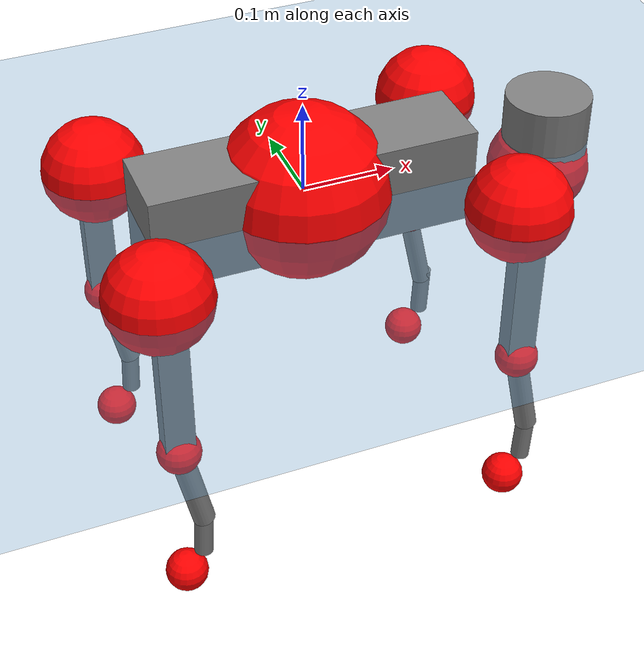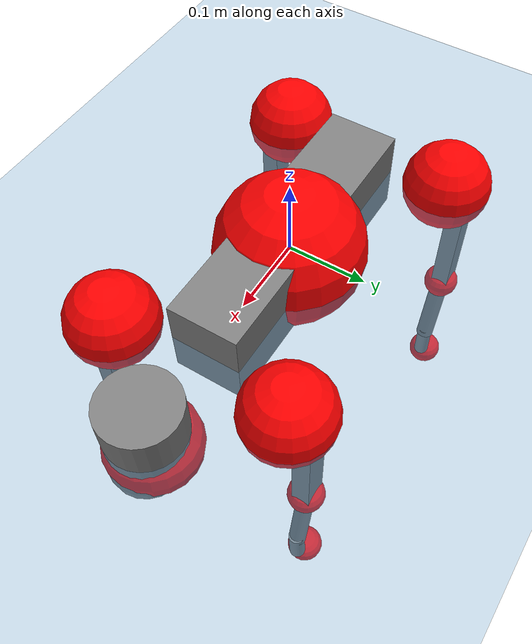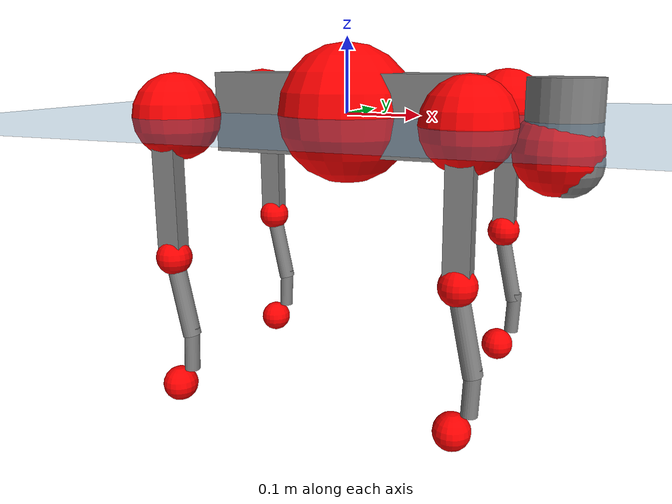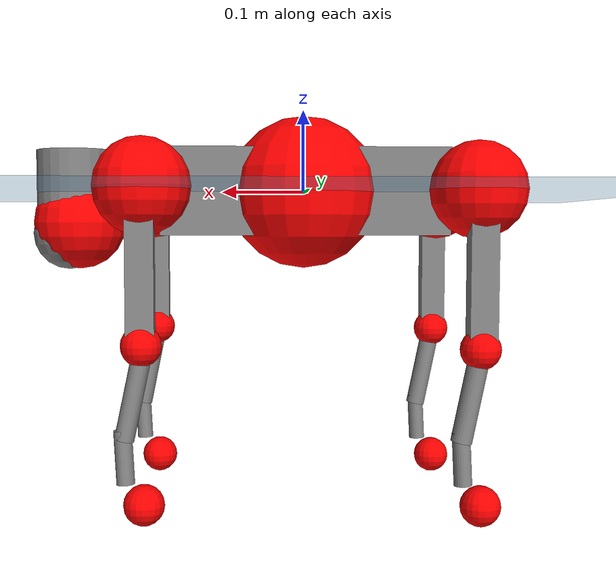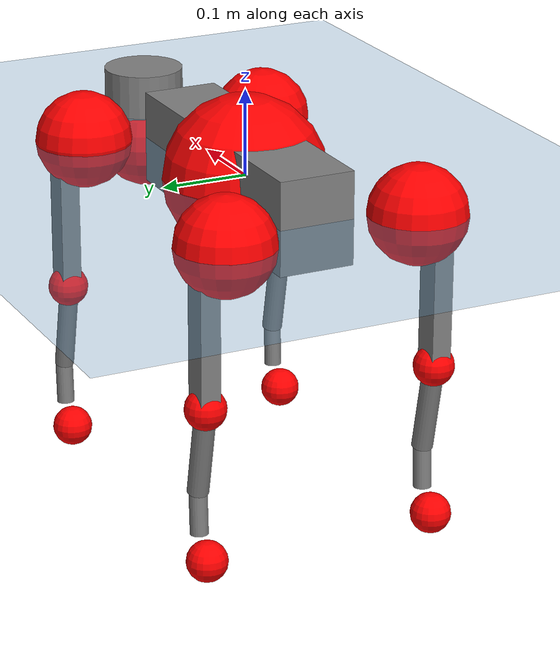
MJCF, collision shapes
<mujoco model="go2">
  <compiler angle="radian" assetdir="assets" balanceinertia="true" inertiafromgeom="false"/>

  <option timestep="0.005" density="1.2" viscosity="2e-05"/>

  <size nkey="1"/>

  <visual>
    <quality shadowsize="8192"/>
    <map shadowclip="0.5"/>
  </visual>

  <default>
    <default class="/">
      <geom contype="0" conaffinity="0" group="1" solref="-1000 -80"/>
      <site size="0.01 0.005 0.005" group="5"/>
      <general forcelimited="true" biastype="affine" gainprm="20" biasprm="0 -20 -0.5"/>
      <default class="go2">
        <joint armature="0.01" damping="0.01" frictionloss="0.2"/>
        <geom condim="1" margin="0.001"/>
        <default class="visual">
          <geom type="mesh" group="2"/>
        </default>
        <default class="collision">
          <geom group="3"/>
          <default class="foot">
            <geom size="0.022 0 0" condim="6" priority="1" friction="0.8 0.02 0.01" solimp="0.015 1 0.022"/>
          </default>
        </default>
        <default class="reward_collision_sphere">
          <geom group="5" rgba="1 0 0 1"/>
        </default>
      </default>
    </default>
  </default>

  <asset>
    <texture type="skybox" colorspace="auto" name="//unnamed_texture_0" builtin="gradient" rgb1="0.95 0.95 0.95" rgb2="0.95 0.95 0.95" width="100" height="600"/>
    <texture type="2d" colorspace="auto" name="texplane" builtin="checker" rgb1="0.345 0.575 0.748" rgb2="0.345 0.575 0.748" markrgb="1 1 1" width="512" height="512"/>
    <material name="MatPlane" class="/" texture="texplane" texuniform="true" texrepeat="2 2" specular="0.9"/>
    <material name="metal" class="/" rgba="0.9 0.95 0.95 1"/>
    <material name="black" class="/" rgba="0 0 0 1"/>
    <material name="white" class="/"/>
    <material name="gray" class="/" rgba="0.671705 0.692426 0.77427 1"/>
    <mesh name="base_0" class="/" file="base_0.obj"/>
    <mesh name="base_1" class="/" file="base_1.obj"/>
    <mesh name="base_2" class="/" file="base_2.obj"/>
    <mesh name="base_3" class="/" file="base_3.obj"/>
    <mesh name="base_4" class="/" file="base_4.obj"/>
    <mesh name="hip_0" class="/" file="hip_0.obj"/>
    <mesh name="hip_1" class="/" file="hip_1.obj"/>
    <mesh name="thigh_0" class="/" file="thigh_0.obj"/>
    <mesh name="thigh_1" class="/" file="thigh_1.obj"/>
    <mesh name="thigh_mirror_0" class="/" file="thigh_mirror_0.obj"/>
    <mesh name="thigh_mirror_1" class="/" file="thigh_mirror_1.obj"/>
    <mesh name="calf_0" class="/" file="calf_0.obj"/>
    <mesh name="calf_1" class="/" file="calf_1.obj"/>
    <mesh name="calf_mirror_0" class="/" file="calf_mirror_0.obj"/>
    <mesh name="calf_mirror_1" class="/" file="calf_mirror_1.obj"/>
    <mesh name="foot" class="/" file="foot.obj"/>
  </asset>

  <worldbody>
    <geom name="floor" class="/" size="100 100 0.125" type="plane" group="0" material="MatPlane"/>
    <light name="toplight_shadow" class="/" pos="0 0 5" dir="0.0990148 0.0990148 -0.990148" type="directional" ambient="0.04 0.04 0.04" diffuse="0.55 0.55 0.55" specular="0.12 0.12 0.12"/>
    <light name="toplight_fill" class="/" pos="0 0 5" dir="0.0990148 0.0990148 -0.990148" type="directional" castshadow="false" ambient="0.04 0.04 0.04" diffuse="0.3 0.3 0.3" specular="0.08 0.08 0.08"/>
    <body name="trunk" childclass="go2" pos="-0.000460229 6.21001e-05 8.54855e-05" quat="1 -0.000173267 4.86585e-05 -9.69163e-05">
      <inertial pos="0.0199029 0.000388956 -0.00442633" quat="0.00133107 0.713471 -0.00327023 0.700676" mass="5.61895" diaginertia="0.0986365 0.0861393 0.0101968"/>
      <joint name="//unnamed_joint_0" type="free" armature="0" damping="0" frictionloss="0"/>
      <geom name="//unnamed_geom_1" class="visual" material="black" mesh="base_0"/>
      <geom name="//unnamed_geom_2" class="visual" material="black" mesh="base_1"/>
      <geom name="//unnamed_geom_3" class="visual" material="black" mesh="base_2"/>
      <geom name="//unnamed_geom_4" class="visual" material="white" mesh="base_3"/>
      <geom name="//unnamed_geom_5" class="visual" material="gray" mesh="base_4"/>
      <geom name="trunk_1" class="collision" size="0.175536 0.0436275 0.0531929" type="box"/>
      <geom name="trunk_2" class="collision" size="0.0466604 0.0419944" pos="0.280656 0 0.0083927" type="cylinder"/>
      <geom name="trunk_3" class="collision" size="0.0438608" pos="0.288534 0 -0.0503562"/>
      <geom name="//unnamed_geom_9" class="reward_collision_sphere" size="0.0933208"/>
      <geom name="//unnamed_geom_10" class="reward_collision_sphere" size="0.0559925" pos="0.275732 0 -0.0377671"/>
      <site name="imu" pos="-0.0249223 -0.000317216 0.0353599" size="0.00933208"/>
      <camera name="track" pos="0 -1.9512 0" quat="0.707107 0.707107 0 0" mode="trackcom"/>
      <camera name="ego_camera" pos="0.307244 0 0.0377671" quat="-0.5 -0.5 0.5 0.5"/>
      <body name="FL_hip" pos="0.190835 0.0465087 0.00262083" quat="1 -3.99067e-05 -8.49243e-06 -1.4282e-05">
        <inertial pos="-0.00523673 0.00287106 2.77703e-05" quat="0.496868 0.499172 0.505588 0.498328" mass="0.541309" diaginertia="0.000812659 0.000525689 0.00019824"/>
        <joint name="FL_hip_joint" pos="0 0 0" axis="0.999997 0.00222044 0.00137049" stiffness="0.00287791" range="-1.04723 1.04496" armature="0.00932084" damping="0.00309148" frictionloss="0.194941"/>
        <geom name="//unnamed_geom_11" class="visual" material="metal" mesh="hip_0"/>
        <geom name="//unnamed_geom_12" class="visual" material="gray" mesh="hip_1"/>
        <geom name="//unnamed_geom_13" class="collision" size="0.0429276 0.0186642" pos="0 0.0780478 0" quat="0.707107 0.707107 0 0" type="cylinder"/>
        <geom name="//unnamed_geom_14" class="reward_collision_sphere" size="0.0559925" pos="0 0.0682918 0"/>
        <body name="FL_thigh" pos="0.000295509 0.09345 0.00101954" quat="1 -1.94558e-05 4.25983e-05 2.13637e-05">
          <inertial pos="-0.00398112 -0.0216807 -0.0280562" quat="0.829829 0.0879231 -0.0187699 0.550728" mass="0.949663" diaginertia="0.00553251 0.00514802 0.000368675"/>
          <joint name="FL_thigh_joint" pos="0 0 0" axis="0.00390565 0.999975 -0.00595343" stiffness="0.0057736" range="-1.57408 3.47494" armature="0.00910322" damping="0.00414136" frictionloss="0.194106"/>
          <geom name="//unnamed_geom_15" class="visual" material="metal" mesh="thigh_0"/>
          <geom name="//unnamed_geom_16" class="visual" material="gray" mesh="thigh_1"/>
          <geom name="//unnamed_geom_17" class="collision" size="0.0993867 0.0114318 0.0158645" pos="0 0 -0.0893822" quat="0.707107 0 0.707107 0" type="box"/>
          <body name="FL_calf" pos="-0.000535015 -0.000847305 -0.178934" quat="1 -6.5973e-05 3.87114e-05 0.00018224">
            <inertial pos="0.00622749 -2.3112e-05 -0.117366" quat="0.71089 0.00252445 -0.00456666 0.703283" mass="0.195032" diaginertia="0.00138303 0.00128413 2.21618e-05"/>
            <joint name="FL_calf_joint" pos="0 0 0" axis="-0.00356625 0.999991 -0.00221079" range="-2.74242 -0.835262" armature="0.00941801" damping="0.00193472" frictionloss="0.188308"/>
            <geom name="//unnamed_geom_18" class="visual" material="gray" mesh="calf_0"/>
            <geom name="//unnamed_geom_19" class="visual" material="black" mesh="calf_1"/>
            <geom name="FL_calf0" class="collision" size="0.0111985 0.0559925" pos="0.00787806 0 -0.0503562" quat="0.994493 0 -0.104807 0" type="cylinder"/>
            <geom name="//unnamed_geom_21" class="collision" size="0.0102653 0.0303293" pos="0.0196952 0 -0.124212" quat="0.999688 0 0.0249974 0" type="cylinder"/>
            <geom name="//unnamed_geom_22" class="visual" pos="0 0 -0.178764" quat="1 0 0 0" material="black" mesh="foot"/>
            <geom name="FL_foot" class="foot" size="0.0181708" pos="-0.00196952 0 -0.178764"/>
            <geom name="//unnamed_geom_24" class="reward_collision_sphere" size="0.0233302"/>
            <geom name="//unnamed_geom_25" class="reward_collision_sphere" size="0.0233302" pos="-0.00196952 0 -0.178764"/>
            <site name="FL_foot" class="foot" pos="-0.00196952 0 -0.178764" size="0.00933208"/>
          </body>
        </body>
      </body>
      <body name="FR_hip" pos="0.191151 -0.0451009 0.000278106" quat="1 -6.25542e-05 6.30695e-05 -3.29419e-06">
        <inertial pos="-0.00429779 -0.00263774 0.000572103" quat="0.497047 0.5053 0.501154 0.496449" mass="0.555008" diaginertia="0.000828182 0.000528499 0.000202471"/>
        <joint name="FR_hip_joint" pos="0 0 0" axis="1 1.85581e-05 0.0001139" stiffness="0.000291993" range="-1.04236 1.05012" armature="0.00933614" damping="0.0153667" frictionloss="0.186456"/>
        <geom name="//unnamed_geom_26" class="visual" pos="0 1.18763e-09 5.094e-08" quat="4.63268e-05 1 0 0" material="metal" mesh="hip_0"/>
        <geom name="//unnamed_geom_27" class="visual" pos="0 1.9253e-09 -1.25994e-07" quat="4.63268e-05 1 0 0" material="gray" mesh="hip_1"/>
        <geom name="//unnamed_geom_28" class="collision" size="0.0429276 0.0186642" pos="0 -0.0780478 0" quat="0.707107 0.707107 0 0" type="cylinder"/>
        <geom name="//unnamed_geom_29" class="reward_collision_sphere" size="0.0559925" pos="0 -0.0682918 0"/>
        <body name="FR_thigh" pos="-0.000322965 -0.092781 0.000566393" quat="1 -1.98028e-05 8.66798e-05 6.28696e-06">
          <inertial pos="-0.00326528 0.0216222 -0.026481" quat="0.553089 -0.0185992 0.081181 0.828949" mass="0.923603" diaginertia="0.00554261 0.0051702 0.000364442"/>
          <joint name="FR_thigh_joint" pos="0 0 0" axis="4.49036e-05 -1 -0.000614092" range="-3.48877 1.56037" armature="0.00971937" damping="0.0160917" frictionloss="0.184043"/>
          <geom name="//unnamed_geom_30" class="visual" material="metal" mesh="thigh_mirror_0"/>
          <geom name="//unnamed_geom_31" class="visual" material="gray" mesh="thigh_mirror_1"/>
          <geom name="//unnamed_geom_32" class="collision" size="0.0993867 0.0114318 0.0158645" pos="0 0 -0.0893822" quat="0.707107 0 0.707107 0" type="box"/>
          <body name="FR_calf" pos="0.000454049 -0.000703546 -0.178782" quat="1 -1.12791e-06 -0.000421666 -0.000123351">
            <inertial pos="0.00698505 0.000708051 -0.119082" quat="0.703702 -0.00347168 -0.000142492 0.710487" mass="0.192441" diaginertia="0.00136388 0.00128952 2.1895e-05"/>
            <joint name="FR_calf_joint" pos="0 0 0" axis="0.00253112 -0.999996 0.00108863" range="0.833706 2.73818" armature="0.00900985" damping="0.00965783" frictionloss="0.182775"/>
            <geom name="//unnamed_geom_33" class="visual" material="gray" mesh="calf_mirror_0"/>
            <geom name="//unnamed_geom_34" class="visual" material="black" mesh="calf_mirror_1"/>
            <geom name="FR_calf0" class="collision" size="0.0121317 0.0559925" pos="0.00984758 0 -0.0503562" quat="0.995004 0 -0.0998334 0" type="cylinder"/>
            <geom name="//unnamed_geom_36" class="collision" size="0.0102653 0.0303293" pos="0.0196952 0 -0.124212" quat="0.999688 0 0.0249974 0" type="cylinder"/>
            <geom name="//unnamed_geom_37" class="visual" pos="0 0 -0.178764" quat="1 0 0 0" material="black" mesh="foot"/>
            <geom name="FR_foot" class="foot" size="0.0215856" pos="-0.00196952 0 -0.178764"/>
            <geom name="//unnamed_geom_39" class="reward_collision_sphere" size="0.0233302"/>
            <geom name="//unnamed_geom_40" class="reward_collision_sphere" size="0.0233302" pos="-0.00196952 0 -0.178764"/>
            <site name="FR_foot" class="foot" pos="-0.00196952 0 -0.178764" size="0.00933208"/>
          </body>
        </body>
      </body>
      <body name="RL_hip" pos="-0.190798 0.0461915 -0.00075666" quat="1 0.0001337 -2.76565e-05 0.000142304">
        <inertial pos="0.00524019 0.00134298 -0.00110229" quat="0.50592 0.495835 0.496822 0.501359" mass="0.552437" diaginertia="0.000829383 0.000524819 0.000202162"/>
        <joint name="RL_hip_joint" pos="0 0 0" axis="-0.999815 -0.0124185 0.0146805" stiffness="0.00284717" range="-1.05066 1.05057" armature="0.00940224" damping="0.00765396" frictionloss="0.186359"/>
        <geom name="//unnamed_geom_41" class="visual" pos="-1.26743e-09 0 -2.48446e-07" quat="4.63268e-05 0 1 0" material="metal" mesh="hip_0"/>
        <geom name="//unnamed_geom_42" class="visual" pos="-2.05466e-09 0 -2.20336e-07" quat="4.63268e-05 0 1 0" material="gray" mesh="hip_1"/>
        <geom name="//unnamed_geom_43" class="collision" size="0.0429276 0.0186642" pos="0 0.0780478 0" quat="0.707107 0.707107 0 0" type="cylinder"/>
        <geom name="//unnamed_geom_44" class="reward_collision_sphere" size="0.0559925" pos="0 0.0682918 0"/>
        <body name="RL_thigh" pos="0.000262446 0.0927174 -0.00126105" quat="1 -2.30531e-05 -9.22051e-05 2.61492e-05">
          <inertial pos="-0.00431131 -0.0214889 -0.027781" quat="0.829448 0.0850756 -0.0200812 0.551702" mass="0.948816" diaginertia="0.00552992 0.00516179 0.000369675"/>
          <joint name="RL_thigh_joint" pos="0 0 0" axis="0.00270701 0.999996 -0.00116266" stiffness="0.00230609" range="-0.510506 4.55685" armature="0.00953674" damping="0.0104779" frictionloss="0.186269"/>
          <geom name="//unnamed_geom_45" class="visual" material="metal" mesh="thigh_0"/>
          <geom name="//unnamed_geom_46" class="visual" material="gray" mesh="thigh_1"/>
          <geom name="//unnamed_geom_47" class="collision" size="0.0993867 0.0114318 0.0158645" pos="0 0 -0.0893822" quat="0.707107 0 0.707107 0" type="box"/>
          <body name="RL_calf" pos="0.00085717 -0.00123758 -0.179262" quat="1 6.60849e-05 -0.000128251 -3.52623e-05">
            <inertial pos="0.00555461 -0.000638533 -0.118766" quat="0.711522 0.00284651 -0.000500967 0.702658" mass="0.198178" diaginertia="0.00140913 0.00130064 2.24312e-05"/>
            <joint name="RL_calf_joint" pos="0 0 0" axis="-0.00821763 0.999966 0.00103304" range="-2.72929 -0.819901" armature="0.00936394" damping="0" frictionloss="0.191826"/>
            <geom name="//unnamed_geom_48" class="visual" material="gray" mesh="calf_0"/>
            <geom name="//unnamed_geom_49" class="visual" material="black" mesh="calf_1"/>
            <geom name="RL_calf0" class="collision" size="0.0121317 0.0559925" pos="0.00984758 0 -0.0503562" quat="0.995004 0 -0.0998334 0" type="cylinder"/>
            <geom name="//unnamed_geom_51" class="collision" size="0.0102653 0.0303293" pos="0.0196952 0 -0.124212" quat="0.999688 0 0.0249974 0" type="cylinder"/>
            <geom name="//unnamed_geom_52" class="visual" pos="0 0 -0.178764" quat="1 0 0 0" material="black" mesh="foot"/>
            <geom name="RL_foot" class="foot" size="0.0180711" pos="-0.00196952 0 -0.178764"/>
            <geom name="//unnamed_geom_54" class="reward_collision_sphere" size="0.0233302"/>
            <geom name="//unnamed_geom_55" class="reward_collision_sphere" size="0.0233302" pos="-0.00196952 0 -0.178764"/>
            <site name="RL_foot" class="foot" pos="-0.00196952 0 -0.178764" size="0.00933208"/>
          </body>
        </body>
      </body>
      <body name="RR_hip" pos="-0.189707 -0.0453916 -0.00148296" quat="1 8.86435e-05 -0.000129485 0.00017383">
        <inertial pos="0.00604115 -0.00262117 -0.000166663" quat="0.502202 0.494166 0.497131 0.506412" mass="0.543005" diaginertia="0.00081332 0.00052365 0.000198145"/>
        <joint name="RR_hip_joint" pos="0 0 0" axis="-1 -0.000628167 -0.000444282" range="-1.04182 1.03532" armature="0.00946281" damping="0.00743312" frictionloss="0.187307"/>
        <geom name="//unnamed_geom_56" class="visual" pos="1.26712e-09 1.18763e-09 -2.99386e-07" quat="2.14617e-09 4.63268e-05 4.63268e-05 -1" material="metal" mesh="hip_0"/>
        <geom name="//unnamed_geom_57" class="visual" pos="2.05545e-09 1.9253e-09 -9.43422e-08" quat="2.14617e-09 4.63268e-05 4.63268e-05 -1" material="gray" mesh="hip_1"/>
        <geom name="//unnamed_geom_58" class="collision" size="0.0429276 0.0186642" pos="0 -0.0780478 0" quat="0.707107 0.707107 0 0" type="cylinder"/>
        <geom name="//unnamed_geom_59" class="reward_collision_sphere" size="0.0559925" pos="0 -0.0682918 0"/>
        <body name="RR_thigh" pos="0.000556137 -0.0936266 -0.00129066" quat="1 0.000184677 0.000147349 3.10013e-05">
          <inertial pos="-0.00333543 0.0210234 -0.0270125" quat="0.551261 -0.0201592 0.0849189 0.829755" mass="0.95566" diaginertia="0.00562297 0.00523865 0.000369937"/>
          <joint name="RR_thigh_joint" pos="0 0 0" axis="0.00638257 -0.999978 -0.00165783" range="-4.55488 0.517137" armature="0.00917719" damping="0.0141239" frictionloss="0.188053"/>
          <geom name="//unnamed_geom_60" class="visual" material="metal" mesh="thigh_mirror_0"/>
          <geom name="//unnamed_geom_61" class="visual" material="gray" mesh="thigh_mirror_1"/>
          <geom name="//unnamed_geom_62" class="collision" size="0.0993867 0.0114318 0.0158645" pos="0 0 -0.0893822" quat="0.707107 0 0.707107 0" type="box"/>
          <body name="RR_calf" pos="0.000552381 -0.000105057 -0.179673" quat="1 1.0274e-05 2.04796e-05 8.39768e-07">
            <inertial pos="0.00542781 0.00107064 -0.118425" quat="0.703783 -0.00635262 -0.00160573 0.710385" mass="0.19557" diaginertia="0.00138669 0.00129268 2.23108e-05"/>
            <joint name="RR_calf_joint" pos="0 0 0" axis="-0.000701223 -0.999995 -0.00306935" range="0.832248 2.72413" armature="0.00933297" damping="0.00948145" frictionloss="0.183071"/>
            <geom name="//unnamed_geom_63" class="visual" material="gray" mesh="calf_mirror_0"/>
            <geom name="//unnamed_geom_64" class="visual" material="black" mesh="calf_mirror_1"/>
            <geom name="RR_calf0" class="collision" size="0.0121317 0.0559925" pos="0.00984758 0 -0.0503562" quat="0.995004 0 -0.0998334 0" type="cylinder"/>
            <geom name="//unnamed_geom_66" class="collision" size="0.0102653 0.0303293" pos="0.0196952 0 -0.124212" quat="0.999688 0 0.0249974 0" type="cylinder"/>
            <geom name="//unnamed_geom_67" class="visual" pos="0 0 -0.178764" quat="1 0 0 0" material="black" mesh="foot"/>
            <geom name="RR_foot" class="foot" size="0.0222577" pos="-0.00196952 0 -0.178764"/>
            <geom name="//unnamed_geom_69" class="reward_collision_sphere" size="0.0233302"/>
            <geom name="//unnamed_geom_70" class="reward_collision_sphere" size="0.0233302" pos="-0.00196952 0 -0.178764"/>
            <site name="RR_foot" class="foot" pos="-0.00196952 0 -0.178764" size="0.00933208"/>
          </body>
        </body>
      </body>
    </body>
  </worldbody>

  <contact>
    <pair class="/" geom1="floor" geom2="FL_foot" name="//unnamed_contact_0"/>
    <pair class="/" geom1="floor" geom2="FR_foot" name="//unnamed_contact_1"/>
    <pair class="/" geom1="floor" geom2="RL_foot" name="//unnamed_contact_2"/>
    <pair class="/" geom1="floor" geom2="RR_foot" name="//unnamed_contact_3"/>
  </contact>

  <actuator>
    <general name="FL_hip" class="/" joint="FL_hip_joint" forcerange="-22.6734 22.6734" gainprm="19.1096" biasprm="0 -19.1096 -0.477556"/>
    <general name="FL_thigh" class="/" joint="FL_thigh_joint" forcerange="-21.9638 21.9638" gainprm="19.1096" biasprm="0 -19.1096 -0.477556"/>
    <general name="FL_calf" class="/" joint="FL_calf_joint" forcerange="-42.1213 42.1213" gainprm="19.1096" biasprm="0 -19.1096 -0.477556"/>
    <general name="FR_hip" class="/" joint="FR_hip_joint" forcerange="-22.1886 22.1886" gainprm="19.1096" biasprm="0 -19.1096 -0.477556"/>
    <general name="FR_thigh" class="/" joint="FR_thigh_joint" forcerange="-21.3537 21.3537" gainprm="19.1096" biasprm="0 -19.1096 -0.477556"/>
    <general name="FR_calf" class="/" joint="FR_calf_joint" forcerange="-41.4775 41.4775" gainprm="19.1096" biasprm="0 -19.1096 -0.477556"/>
    <general name="RL_hip" class="/" joint="RL_hip_joint" forcerange="-22.2086 22.2086" gainprm="19.1096" biasprm="0 -19.1096 -0.477556"/>
    <general name="RL_thigh" class="/" joint="RL_thigh_joint" forcerange="-22.8401 22.8401" gainprm="19.1096" biasprm="0 -19.1096 -0.477556"/>
    <general name="RL_calf" class="/" joint="RL_calf_joint" forcerange="-42.1874 42.1874" gainprm="19.1096" biasprm="0 -19.1096 -0.477556"/>
    <general name="RR_hip" class="/" joint="RR_hip_joint" forcerange="-22.0741 22.0741" gainprm="19.1096" biasprm="0 -19.1096 -0.477556"/>
    <general name="RR_thigh" class="/" joint="RR_thigh_joint" forcerange="-21.7944 21.7944" gainprm="19.1096" biasprm="0 -19.1096 -0.477556"/>
    <general name="RR_calf" class="/" joint="RR_calf_joint" forcerange="-43.1558 43.1558" gainprm="19.1096" biasprm="0 -19.1096 -0.477556"/>
  </actuator>

  <sensor>
    <gyro site="imu" name="imu_angular_velocity"/>
    <velocimeter site="imu" name="imu_linear_velocity"/>
    <framelinvel objtype="site" objname="FL_foot" name="FL_foot_global_linear_velocity"/>
    <framelinvel objtype="site" objname="FR_foot" name="FR_foot_global_linear_velocity"/>
    <framelinvel objtype="site" objname="RL_foot" name="RL_foot_global_linear_velocity"/>
    <framelinvel objtype="site" objname="RR_foot" name="RR_foot_global_linear_velocity"/>
  </sensor>

  <keyframe>
    <key name="home" qpos="0 0 0.325 1 0 0 0 0.1 0.8 -1.5 -0.1 -0.8 1.5 -0.1 0.8 -1.5 0.1 -0.8 1.5"/>
  </keyframe>
</mujoco>
